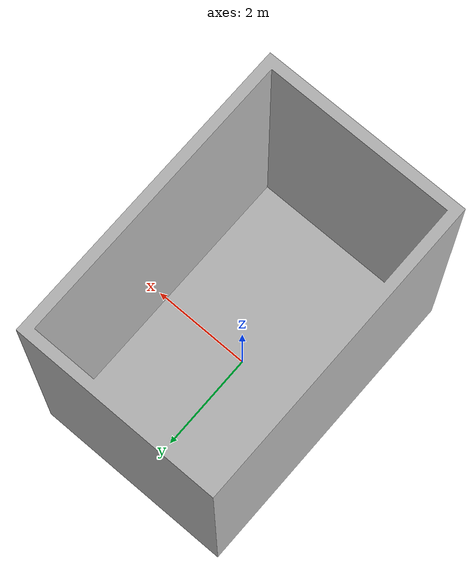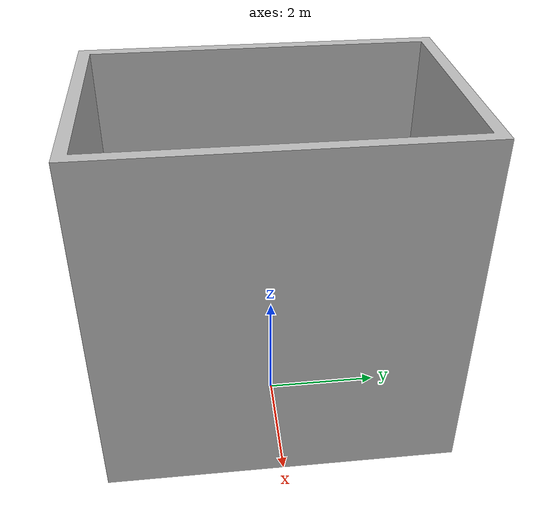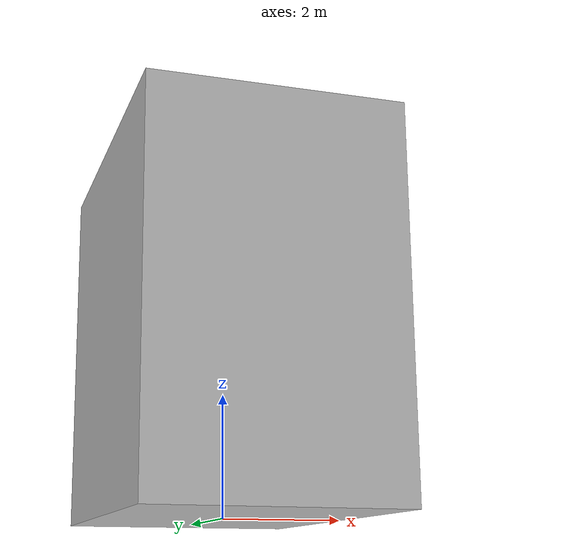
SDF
<?xml version='1.0' encoding='UTF-8'?>
<sdf version="1.6">
  <model name="inpetu_pool">
    <static>true</static>
    <link name="pool">
      <visual name="visual">
        <geometry>
          <mesh>
            <uri>model://inpetu_pool/meshes/piscina.dae</uri>
          </mesh>
        </geometry>
      </visual>
      <collision name="collision">
        <pose>0 0 0 0 0 0</pose>
        <geometry>
          <mesh>
            <uri>model://inpetu_pool/meshes/piscina.dae</uri>
          </mesh>
        </geometry>
      </collision>
      <material>
        <script>
          <uri> model://inpetu_pool/materials/script</uri>
          <uri> model://inpetu_pool/materials/textures</uri>
          <name>Pool/Normal</name>
        </script>
      </material>
    </link>
  </model>
</sdf>
